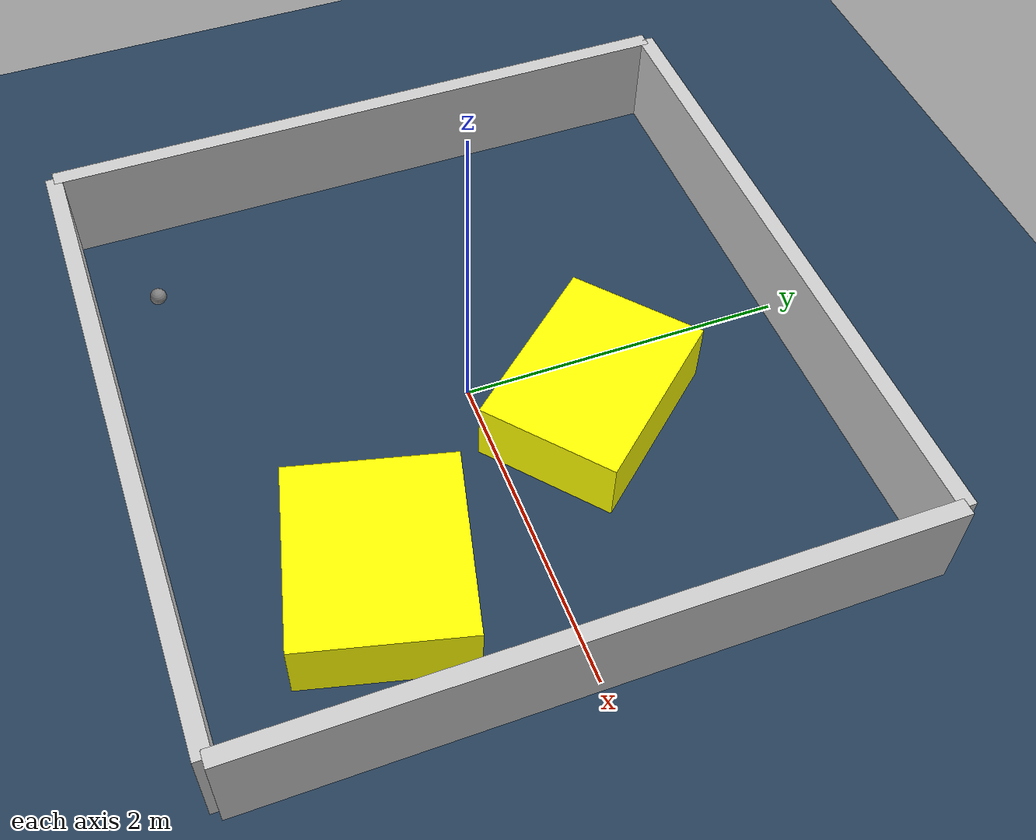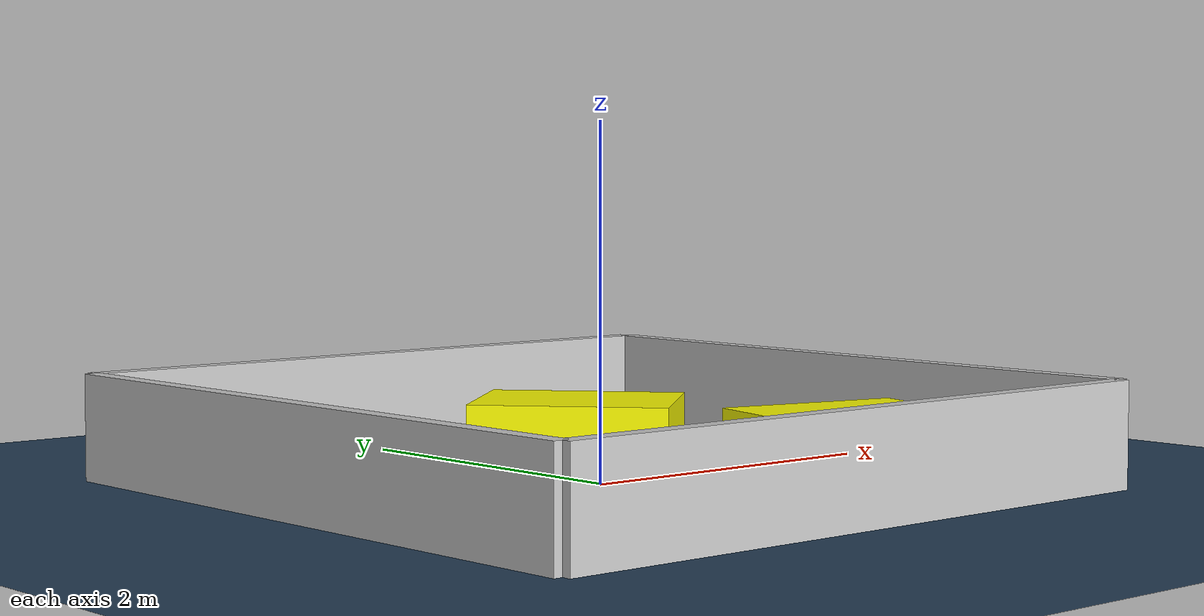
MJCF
<?xml version="1.0" ?>
<mujoco model="generated_environment">
  <option timestep="0.01" integrator="RK4" cone="elliptic"/>
  <default>
    <geom density="1"/>
  </default>
  <asset>
    <texture builtin="gradient" height="3072" rgb1="0.3 0.5 0.7" rgb2="0 0 0" type="skybox" width="512"/>
    <texture builtin="checker" height="300" mark="edge" markrgb="0.8 0.8 0.8" name="groundplane" rgb1="0.2 0.3 0.4" rgb2="0.1 0.2 0.3" type="2d" width="300"/>
    <material name="groundplane" reflectance="0.2" texrepeat="5 5" texture="groundplane" texuniform="true"/>
    <material name="robot" rgba="0.0 1.0 0.0 1"/>
  </asset>
  <worldbody>
    <light dir="0 0 -1" directional="true" pos="0 0 1.5"/>
    <geom condim="4" friction="1.0 0.005 0.001" material="groundplane" name="floor" size="0 0 0.05" type="plane"/>
    <body name="walls">
      <geom name="wall_1" condim="4" pos="-2.0 0.0 0.3" rgba="0.800000011920929 0.800000011920929 0.800000011920929 1.0" size="0.05 2.0 0.3" type="box"/>
      <geom name="wall_2" condim="4" pos="2.0 0.0 0.3" rgba="0.800000011920929 0.800000011920929 0.800000011920929 1.0" size="0.05 2.0 0.3" type="box"/>
      <geom name="wall_3" condim="4" pos="0.0 -2.0 0.3" rgba="0.800000011920929 0.800000011920929 0.800000011920929 1.0" size="2.0 0.05 0.3" type="box"/>
      <geom name="wall_4" condim="4" pos="0.0 2.0 0.3" rgba="0.800000011920929 0.800000011920929 0.800000011920929 1.0" size="2.0 0.05 0.3" type="box"/>
    </body>
    <body name="robot">
      <joint name="joint_x" type="slide" pos="0 0 0" axis="1 0 0"/>
      <joint name="joint_y" type="slide" pos="0 0 0" axis="0 1 0"/>
      <geom name="robot" type="sphere" pos="-1.1976848776292055 -1.5825055864700448 0.2" size="0.05" mass="5." friction="1.0 0.005 0.0001" condim="4"/>
      <site name="sensor_ball"/>
    </body>
    <body name="obstacle_1_movable">
      <geom name="obstacle_1_movable" condim="4" pos="0.3796792610936375 0.6239436054448979 0.2" euler="0 0 310.3272764750342" friction="1.0 0.005 0.001" rgba="1 1 0 1" size="0.5760213551442686 0.42457673753537073 0.2" type="box" mass="0.1"/>
      <joint type="free"/>
    </body>
    <body name="obstacle_2_movable">
      <geom name="obstacle_2_movable" condim="4" pos="1.0847429239881148 -0.8941640075475662 0.2" euler="0 0 76.21082720962099" friction="1.0 0.005 0.001" rgba="1 1 0 1" size="0.4926784046438898 0.5598394442048631 0.2" type="box" mass="0.1"/>
      <joint type="free"/>
    </body>
  </worldbody>
  <actuator>
    <motor name="actuator_x" joint="joint_x" gear="1" ctrlrange="-1 1"/>
    <motor name="actuator_y" joint="joint_y" gear="1" ctrlrange="-1 1"/>
  </actuator>
</mujoco>
